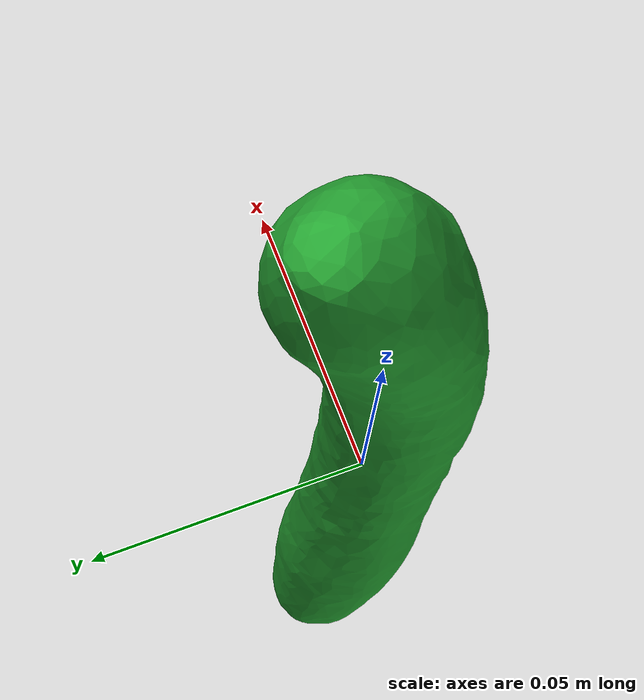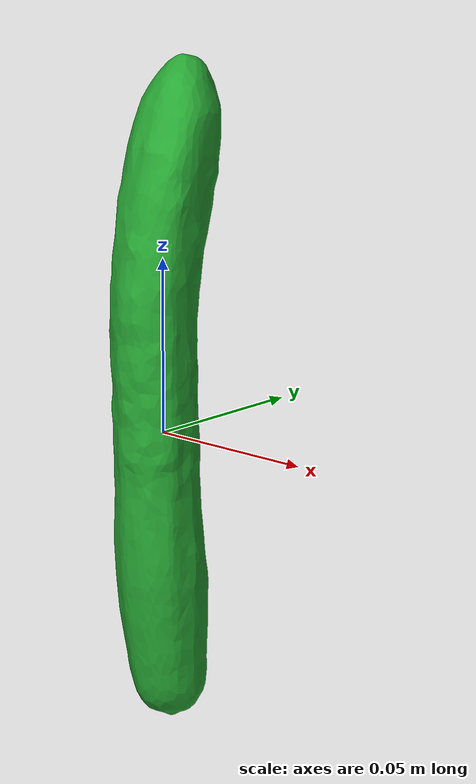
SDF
<?xml version='1.0'?>
<sdf version='1.6'>
  <model name='cucumber'>
    <static>true</static>
    <link name='cucumber'>
      <pose frame=''>0 0 0.01 0 0 0.58</pose>
      <inertial>
        <pose frame=''> 0 0 0 0 0 0</pose>
        <mass>0.2</mass>
        <inertia>
          <ixx>0.01</ixx>
          <ixy>0.01</ixy>
          <ixz>0.01</ixz>
          <iyy>0.01</iyy>
          <iyz>0.01</iyz>
          <izz>0.01</izz>
        </inertia>
      </inertial>
      <visual name='cucumber'>
        <pose frame=''>0 0 0 0 0 0</pose>
        <geometry>
          <mesh>
            <scale>0.001 0.001 0.001</scale>
            <uri>model://meshes/cucumber.stl</uri>
          </mesh>
        </geometry>
        <material>
          <script>
            <uri>file://media/materials/scripts/gazebo.material</uri>
            <name>Gazebo/Green</name>
          </script>
        </material>
      </visual>
      <collision name='cucumber'>
        <pose frame=''>0 0 0 0 0 0</pose>
        <geometry>
          <mesh>
            <scale>0.001 0.001 0.001</scale>
            <uri>model://meshes/cucumber.stl</uri>
          </mesh>
        </geometry>
        <surface>
          <friction>
            <ode>
              <mu>0.5</mu>
              <mu2>0.5</mu2>
              <fdir1>0 0 0</fdir1>
              <slip1>0.1</slip1>
              <slip2>0.1</slip2>
            </ode>
            <torsional>
              <coefficient>1</coefficient>
              <patch_radius>0</patch_radius>
              <surface_radius>0.9</surface_radius>
              <use_patch_radius>0</use_patch_radius>
              <ode>
                <slip>0</slip>
              </ode>
            </torsional>
          </friction>
          <bounce>
            <restitution_coefficient>0</restitution_coefficient>
            <threshold>1e+06</threshold>
          </bounce>
          <contact>
            <collide_without_contact>0</collide_without_contact>
            <collide_without_contact_bitmask>1</collide_without_contact_bitmask>
            <collide_bitmask>1</collide_bitmask>
            <ode>
              <soft_cfm>0.01</soft_cfm>
              <soft_erp>0.2</soft_erp>
              <kp>1e+5</kp>
              <kd>1</kd>
              <max_vel>0.01</max_vel>
              <min_depth>0</min_depth>
            </ode>
            <bullet>
              <split_impulse>1</split_impulse>
              <split_impulse_penetration_threshold>-0.01</split_impulse_penetration_threshold>
              <soft_cfm>0</soft_cfm>
              <soft_erp>0.1</soft_erp>
              <kp>1e+13</kp>
              <kd>1</kd>
            </bullet>
          </contact>
        </surface>
      </collision>
      </link>
  </model>
</sdf>
